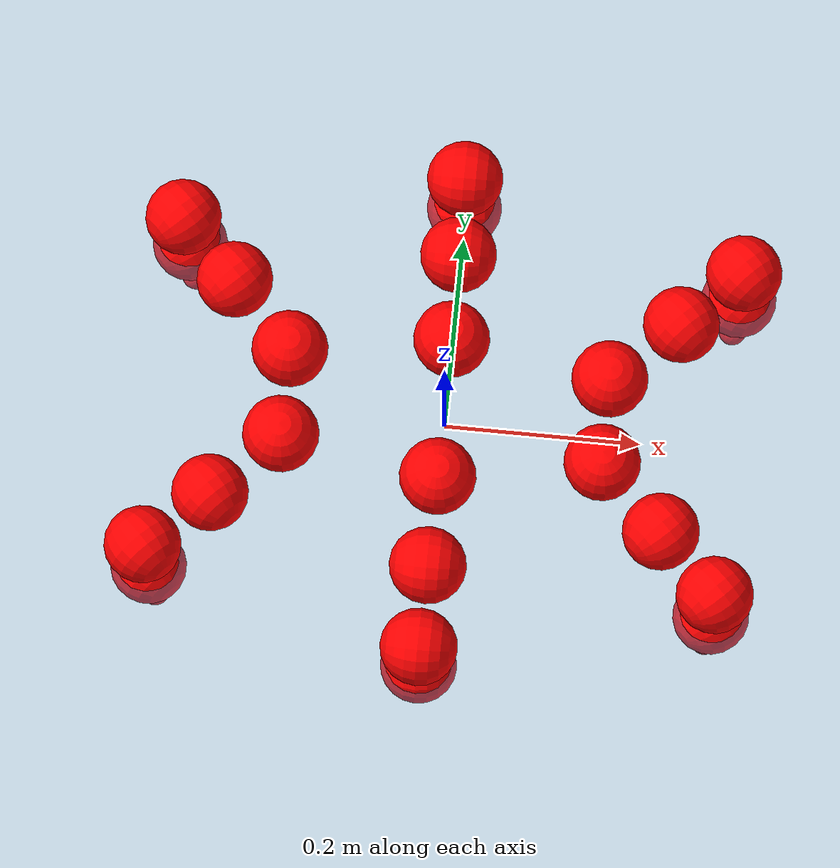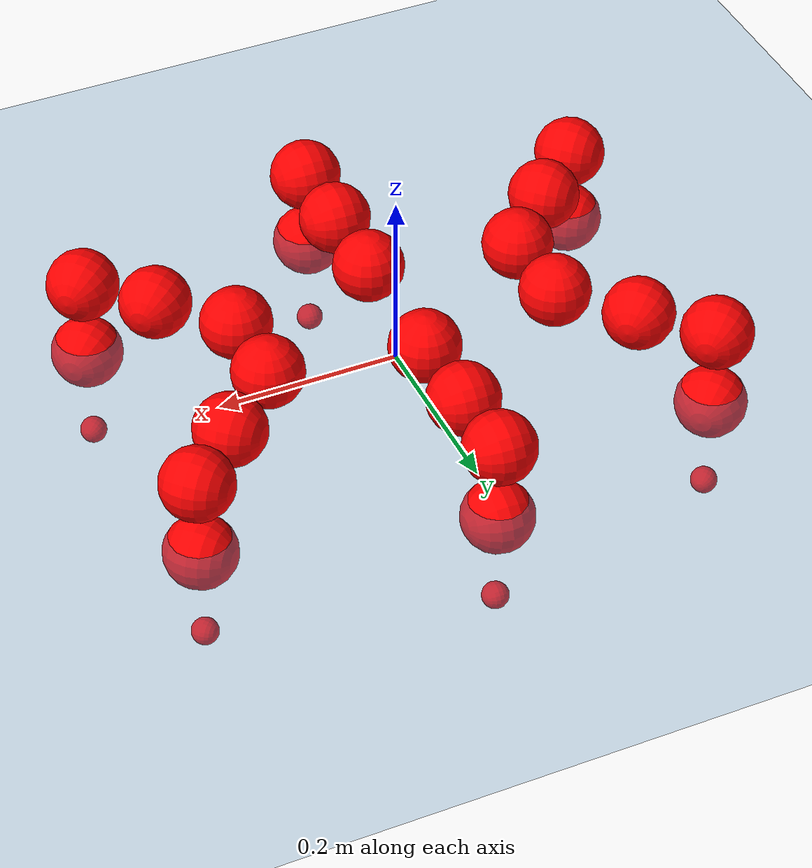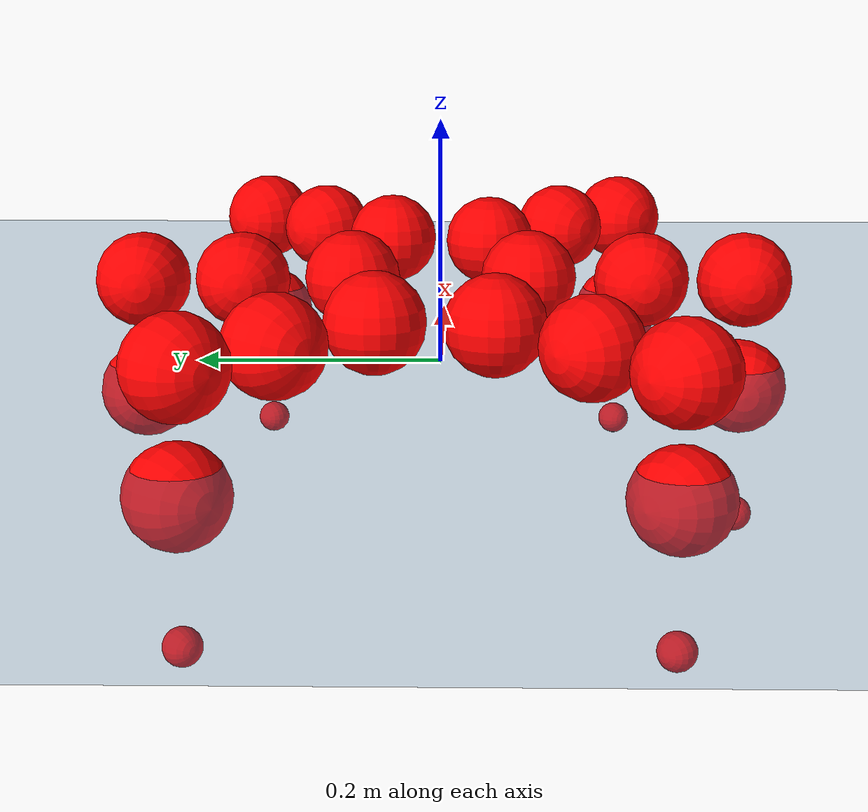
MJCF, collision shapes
<mujoco model="Golem">
  <compiler angle="radian" assetdir="assets" balanceinertia="true" inertiafromgeom="false"/>

  <option timestep="0.005" density="1.2" viscosity="2e-05"/>

  <size nkey="1"/>

  <visual>
    <quality shadowsize="8192"/>
    <map shadowclip="0.5"/>
  </visual>

  <default>
    <default class="/">
      <joint armature="0.01" damping="0.01" frictionloss="0.01"/>
      <geom contype="0" conaffinity="0" group="1" solref="-1000 -80"/>
      <site size="0.01 0.005 0.005" group="5"/>
      <general forcelimited="true" biastype="affine" gainprm="25" biasprm="0 -25 -0.5"/>
      <default class="visual">
        <geom type="mesh" group="2"/>
      </default>
      <default class="collision">
        <geom group="3"/>
      </default>
      <default class="foot">
        <geom size="0.01 0 0" condim="6" group="4" priority="1" solimp="0.015 1 0.01"/>
      </default>
      <default class="reward_collision_sphere">
        <geom group="5" rgba="1 0 0 1"/>
      </default>
    </default>
  </default>

  <asset>
    <texture type="skybox" colorspace="auto" name="//unnamed_texture_0" builtin="gradient" rgb1="0.95 0.95 0.95" rgb2="0.95 0.95 0.95" width="100" height="600"/>
    <texture type="2d" colorspace="auto" name="texplane" builtin="checker" rgb1="0.345 0.575 0.748" rgb2="0.345 0.575 0.748" markrgb="1 1 1" width="512" height="512"/>
    <material name="MatPlane" class="/" texture="texplane" texuniform="true" texrepeat="2 2" specular="0.9"/>
    <mesh name="body" class="/" file="body.stl" scale="0.001 0.001 0.001"/>
    <mesh name="coxa" class="/" file="coxa.stl" scale="0.001 0.001 0.001"/>
    <mesh name="femur" class="/" file="femur.stl" scale="0.001 0.001 0.001"/>
    <mesh name="tibia" class="/" file="tibia.stl" scale="0.001 0.001 0.001"/>
    <mesh name="tarsus" class="/" file="tarsus.stl" scale="0.001 0.001 0.001"/>
  </asset>

  <worldbody>
    <geom name="floor" class="/" size="100 100 0.125" type="plane" group="0" material="MatPlane"/>
    <light name="toplight_shadow" class="/" pos="0 0 5" dir="0.0990148 0.0990148 -0.990148" type="directional" ambient="0.04 0.04 0.04" diffuse="0.55 0.55 0.55" specular="0.12 0.12 0.12"/>
    <light name="toplight_fill" class="/" pos="0 0 5" dir="0.0990148 0.0990148 -0.990148" type="directional" castshadow="false" ambient="0.04 0.04 0.04" diffuse="0.3 0.3 0.3" specular="0.08 0.08 0.08"/>
    <body name="trunk" pos="0.000466459 0.000751234 0.000320613" quat="1 -2.85824e-05 -0.000457756 0.00019135">
      <inertial pos="-0.000142258 0.000356118 -0.00495922" quat="0.999994 0.00234449 0.00231222 -0.000939351" mass="3.31126" diaginertia="0.0115947 0.00287946 0.0155161"/>
      <joint name="//unnamed_joint_0" type="free"/>
      <geom name="//unnamed_geom_1" class="/" pos="0 0 0.0700504" quat="1 0 0 0" type="mesh" rgba="0.9 0.9 0.9 1" mesh="body"/>
      <site name="imu" class="/" pos="0.13729 -0.00238668 0.109371" size="0.00969409"/>
      <camera name="track" class="/" pos="0 -1.56195 0" quat="0.707107 0.707107 0 0" mode="trackcom"/>
      <camera name="ego_camera" class="/" pos="0.134253 0 0.109454" quat="-0.5 -0.5 0.5 0.5"/>
      <body name="coxa_RR" pos="-0.183318 -0.0657188 0.0696532" quat="0.382809 -0.000145351 0.000436996 -0.923828">
        <inertial pos="-0.000185652 0.000490589 -0.000117607" quat="1 3.72725e-05 0.000138505 -7.4945e-05" mass="0.181811" diaginertia="0.0117976 0.00290211 0.0152647"/>
        <joint name="coxa_joint_RR" class="/" pos="0 0 0" axis="-0.000150631 -0.00363148 -0.999993" stiffness="0.000470707" range="-3.14185 3.15757" armature="0.00948409" damping="0.0118047" frictionloss="0.00953615"/>
        <geom name="//unnamed_geom_2" class="/" type="mesh" rgba="0.2 0.2 0.2 1" mesh="coxa"/>
        <geom name="//unnamed_geom_3" class="reward_collision_sphere" size="0.0387764" pos="-0.0309815 0 0"/>
        <body name="femur_RR" pos="0.0618769 0.00233646 -0.00057769" quat="0.500103 -0.500128 0.499689 0.50008">
          <inertial pos="-0.0016648 -8.70327e-05 -0.00210034" quat="0.999958 -0.00845319 -0.0019303 -0.0030507" mass="0.181442" diaginertia="0.0117299 0.00289786 0.0155341"/>
          <joint name="femur_joint_RR" class="/" pos="0 0 0" axis="-0.000700612 -0.00579267 -0.999983" range="-3.13166 3.13619" armature="0.00959174" damping="0" frictionloss="0.00961673"/>
          <geom name="//unnamed_geom_4" class="/" type="mesh" rgba="0.9 0.9 0.9 1" mesh="femur"/>
          <geom name="//unnamed_geom_5" class="reward_collision_sphere" size="0.0387764"/>
          <body name="tibia_RR" pos="0.00122635 -0.0851245 -0.00124493" quat="-1.83117e-05 1 0.000138269 -0.000237801">
            <inertial pos="-2.04926e-05 -0.000226504 -0.000815435" quat="0.999993 0.000798406 -0.00348498 0.00147003" mass="0.184883" diaginertia="0.0120277 0.00298317 0.0161761"/>
            <joint name="tibia_joint_RR" class="/" pos="0 0 0" axis="4.5809e-05 -0.00337009 0.999994" range="-3.12478 3.13993" armature="0.0101778" damping="0.000226735" frictionloss="0.00959149"/>
            <geom name="//unnamed_geom_6" class="/" type="mesh" rgba="0.2 0.2 0.2 1" mesh="tibia"/>
            <geom name="//unnamed_geom_7" class="reward_collision_sphere" size="0.0387764"/>
            <body name="tarsus_RR" pos="0.0901658 -0.000420272 -0.000198218" quat="1 -2.91583e-05 -5.6114e-05 -4.30989e-05">
              <inertial pos="0.0639424 0.000487256 -0.000379886" quat="0.499841 0.493067 0.505902 0.501106" mass="0.18823" diaginertia="0.0116732 0.00291194 0.0160009"/>
              <joint name="tarsus_joint_RR" class="/" pos="0 0 0" axis="-0.00105989 0.0037218 0.999993" range="-3.13856 3.14849" armature="0.0101404" damping="0.0410594" frictionloss="0.00951116"/>
              <geom name="//unnamed_geom_8" class="/" type="mesh" rgba="0.9 0.9 0.9 1" mesh="tarsus"/>
              <geom name="foot_1" class="foot" size="0.00956332" pos="0.115664 0 0" quat="0 -0.707107 0 0.707107"/>
              <geom name="//unnamed_geom_10" class="reward_collision_sphere" size="0.0387764"/>
              <geom name="//unnamed_geom_11" class="reward_collision_sphere" size="0.0145411" pos="0.111017 0 0"/>
              <site name="foot_1" class="foot" pos="0.115664 0 0" quat="0 -0.707107 0 0.707107" size="0.00969409"/>
            </body>
          </body>
        </body>
      </body>
      <body name="coxa_RM" pos="-0.000437854 -0.103538 0.0704983" quat="0.706804 -0.00060383 0.000433721 -0.707409">
        <inertial pos="-0.000265572 -6.34025e-05 -0.000996483" quat="1 -7.60055e-05 -5.26039e-05 -0.00027489" mass="0.182462" diaginertia="0.0115817 0.00290106 0.0158038"/>
        <joint name="coxa_joint_RM" class="/" pos="0 0 0" axis="-7.34336e-05 -0.000302121 -1" range="-3.14324 3.12763" armature="0.00993402" damping="0.0103308" frictionloss="0.0101755"/>
        <geom name="//unnamed_geom_12" class="/" type="mesh" rgba="0.2 0.2 0.2 1" mesh="coxa"/>
        <geom name="//unnamed_geom_13" class="reward_collision_sphere" size="0.0387764" pos="-0.0309815 0 0"/>
        <body name="femur_RM" pos="0.0610847 -0.000712896 -0.00112096" quat="0.499979 -0.499924 0.49993 0.500167">
          <inertial pos="0.00139801 -6.93995e-05 0.00015673" quat="0.999964 -0.00110927 -0.00840472 0.000316541" mass="0.182612" diaginertia="0.0117311 0.00289374 0.0156403"/>
          <joint name="femur_joint_RM" class="/" pos="0 0 0" axis="0.00180688 -0.00135091 -0.999997" range="-3.14597 3.13379" armature="0.00927889" damping="0.00850299" frictionloss="0.00948057"/>
          <geom name="//unnamed_geom_14" class="/" type="mesh" rgba="0.9 0.9 0.9 1" mesh="femur"/>
          <geom name="//unnamed_geom_15" class="reward_collision_sphere" size="0.0387764"/>
          <body name="tibia_RM" pos="-0.000195246 -0.0836997 -0.000706255" quat="-8.12156e-05 1 2.64006e-05 2.28737e-05">
            <inertial pos="-0.0016413 -0.000942843 0.000721517" quat="0.999997 3.85189e-06 -0.00229251 0.000674046" mass="0.180007" diaginertia="0.0117699 0.002903 0.0153554"/>
            <joint name="tibia_joint_RM" class="/" pos="0 0 0" axis="-0.00460009 -0.00184342 0.999988" stiffness="0.00022562" range="-3.14375 3.15724" armature="0.00978937" damping="0.0134391" frictionloss="0.0101253"/>
            <geom name="//unnamed_geom_16" class="/" type="mesh" rgba="0.2 0.2 0.2 1" mesh="tibia"/>
            <geom name="//unnamed_geom_17" class="reward_collision_sphere" size="0.0387764"/>
            <body name="tarsus_RM" pos="0.0894384 -0.00134387 0.00078886" quat="1 4.23035e-05 -1.70553e-05 7.58827e-06">
              <inertial pos="0.0617635 -0.000226654 4.96338e-05" quat="0.500564 0.499713 0.499614 0.500109" mass="0.181543" diaginertia="0.0115085 0.0028765 0.015596"/>
              <joint name="tarsus_joint_RM" class="/" pos="0 0 0" axis="0.000301622 0.00111789 0.999999" range="-3.13593 3.14046" armature="0.00961385" damping="0.00745449" frictionloss="0.00977505"/>
              <geom name="//unnamed_geom_18" class="/" type="mesh" rgba="0.9 0.9 0.9 1" mesh="tarsus"/>
              <geom name="foot_2" class="foot" size="0.00927883" pos="0.115664 0 0" quat="0 -0.707107 0 0.707107"/>
              <geom name="//unnamed_geom_20" class="reward_collision_sphere" size="0.0387764"/>
              <geom name="//unnamed_geom_21" class="reward_collision_sphere" size="0.0145411" pos="0.111017 0 0"/>
              <site name="foot_2" class="foot" pos="0.115664 0 0" quat="0 -0.707107 0 0.707107" size="0.00969409"/>
            </body>
          </body>
        </body>
      </body>
      <body name="coxa_RF" pos="0.184063 -0.0640086 0.0697316" quat="0.923871 3.14798e-05 -2.02398e-05 -0.382704">
        <inertial pos="-0.00177379 0.00021076 0.000395561" quat="0.999994 -0.00260512 0.000743077 0.00207292" mass="0.185016" diaginertia="0.0115081 0.00282172 0.0155272"/>
        <joint name="coxa_joint_RF" class="/" pos="0 0 0" axis="-0.00045605 -0.00384413 -0.999993" stiffness="0.000888135" range="-3.11923 3.13864" armature="0.00972241" damping="0.00883346" frictionloss="0.0100327"/>
        <geom name="//unnamed_geom_22" class="/" type="mesh" rgba="0.2 0.2 0.2 1" mesh="coxa"/>
        <geom name="//unnamed_geom_23" class="reward_collision_sphere" size="0.0387764" pos="-0.0309815 0 0"/>
        <body name="femur_RF" pos="0.0609602 -0.000804126 7.04159e-05" quat="0.499862 -0.499677 0.500234 0.500227">
          <inertial pos="-0.000806035 0.0014622 -0.000793026" quat="0.999999 -0.000536025 -0.00075561 0.0010557" mass="0.183223" diaginertia="0.0116798 0.0028856 0.0156258"/>
          <joint name="femur_joint_RF" class="/" pos="0 0 0" axis="0.0025988 0.000288809 -0.999997" range="-3.13005 3.14535" armature="0.00975561" damping="0.0100349" frictionloss="0.00979054"/>
          <geom name="//unnamed_geom_24" class="/" type="mesh" rgba="0.9 0.9 0.9 1" mesh="femur"/>
          <geom name="//unnamed_geom_25" class="reward_collision_sphere" size="0.0387764"/>
          <body name="tibia_RF" pos="0.00102296 -0.0834629 -0.00015052" quat="-0.000140348 1 -0.000256642 -2.06372e-05">
            <inertial pos="-0.000998062 -0.000381872 0.00131885" quat="0.999992 -0.0031264 -0.00241874 -0.0010775" mass="0.181873" diaginertia="0.0117173 0.00291129 0.0156404"/>
            <joint name="tibia_joint_RF" class="/" pos="0 0 0" axis="0.00323598 0.00232217 0.999992" range="-3.14082 3.1379" armature="0.00954149" damping="0" frictionloss="0.00966676"/>
            <geom name="//unnamed_geom_26" class="/" type="mesh" rgba="0.2 0.2 0.2 1" mesh="tibia"/>
            <geom name="//unnamed_geom_27" class="reward_collision_sphere" size="0.0387764"/>
            <body name="tarsus_RF" pos="0.0909411 0.000911718 -0.000528503" quat="1 -9.20162e-06 7.05853e-05 -7.66255e-05">
              <inertial pos="0.0599555 7.8039e-05 0.000102185" quat="0.500016 0.500178 0.499759 0.500048" mass="0.180274" diaginertia="0.0115933 0.00297104 0.0156071"/>
              <joint name="tarsus_joint_RF" class="/" pos="0 0 0" axis="-0.0053909 0.00671893 0.999963" range="-3.12138 3.13709" armature="0.009794" damping="0" frictionloss="0.0106573"/>
              <geom name="//unnamed_geom_28" class="/" type="mesh" rgba="0.9 0.9 0.9 1" mesh="tarsus"/>
              <geom name="foot_3" class="foot" size="0.0101929" pos="0.115664 0 0" quat="0 -0.707107 0 0.707107"/>
              <geom name="//unnamed_geom_30" class="reward_collision_sphere" size="0.0387764"/>
              <geom name="//unnamed_geom_31" class="reward_collision_sphere" size="0.0145411" pos="0.111017 0 0"/>
              <site name="foot_3" class="foot" pos="0.115664 0 0" quat="0 -0.707107 0 0.707107" size="0.00969409"/>
            </body>
          </body>
        </body>
      </body>
      <body name="coxa_LR" pos="-0.183607 0.0670491 0.0711581" quat="0.382698 -0.000290103 -0.000389768 0.923873">
        <inertial pos="-0.000330162 -0.000384506 -0.00131064" quat="0.999999 -0.000157185 0.000469652 -0.000991719" mass="0.175993" diaginertia="0.0114425 0.00283039 0.0153237"/>
        <joint name="coxa_joint_LR" class="/" pos="0 0 0" axis="3.10585e-05 0.000214311 -1" range="-3.12983 3.17637" armature="0.00980921" damping="0.00611295" frictionloss="0.00878799"/>
        <geom name="//unnamed_geom_32" class="/" type="mesh" rgba="0.2 0.2 0.2 1" mesh="coxa"/>
        <geom name="//unnamed_geom_33" class="reward_collision_sphere" size="0.0387764" pos="-0.0309815 0 0"/>
        <body name="femur_LR" pos="0.0618266 -0.00296358 -0.00162091" quat="0.499978 -0.500016 0.500013 0.499993">
          <inertial pos="0.000271983 -0.000612335 -0.00022207" quat="0.999992 -0.00307218 -0.00157449 0.00223824" mass="0.184273" diaginertia="0.0120175 0.0030101 0.0159395"/>
          <joint name="femur_joint_LR" class="/" pos="0 0 0" axis="5.14701e-05 -0.00446095 0.99999" range="-3.13785 3.13492" armature="0.00953746" damping="0.00994163" frictionloss="0.00993902"/>
          <geom name="//unnamed_geom_34" class="/" type="mesh" rgba="0.9 0.9 0.9 1" mesh="femur"/>
          <geom name="//unnamed_geom_35" class="reward_collision_sphere" size="0.0387764"/>
          <body name="tibia_LR" pos="-0.000123522 -0.0848043 -0.00121946" quat="1.22401e-05 1 0.000119192 -5.62529e-06">
            <inertial pos="-0.000784877 0.00179751 5.32705e-05" quat="0.999998 -4.25342e-05 -0.00133982 0.00130117" mass="0.181942" diaginertia="0.0120047 0.00291646 0.0152979"/>
            <joint name="tibia_joint_LR" class="/" pos="0 0 0" axis="0.00089698 -9.043e-05 -1" range="-3.1393 3.13567" armature="0.00937444" damping="0.00117823" frictionloss="0.00928696"/>
            <geom name="//unnamed_geom_36" class="/" type="mesh" rgba="0.2 0.2 0.2 1" mesh="tibia"/>
            <geom name="//unnamed_geom_37" class="reward_collision_sphere" size="0.0387764"/>
            <body name="tarsus_LR" pos="0.0920721 -4.59241e-06 0.00232445" quat="1 -0.000317029 -0.00019054 0.000416978">
              <inertial pos="0.0637109 0.00109252 0.000923173" quat="0.502737 0.499506 0.501583 0.496149" mass="0.176249" diaginertia="0.0113601 0.00283155 0.0153076"/>
              <joint name="tarsus_joint_LR" class="/" pos="0 0 0" axis="0.00227384 -3.30903e-05 -0.999997" range="-3.1473 3.13499" armature="0.0087058" damping="0.0287251" frictionloss="0.0100742"/>
              <geom name="//unnamed_geom_38" class="/" type="mesh" rgba="0.9 0.9 0.9 1" mesh="tarsus"/>
              <geom name="foot_4" class="foot" size="0.0094378" pos="0.115664 0 0" quat="0.707107 0 -0.707107 0"/>
              <geom name="//unnamed_geom_40" class="reward_collision_sphere" size="0.0387764"/>
              <geom name="//unnamed_geom_41" class="reward_collision_sphere" size="0.0145411" pos="0.111017 0 0"/>
              <site name="foot_4" class="foot" pos="0.115664 0 0" quat="0.707107 0 -0.707107 0" size="0.00969409"/>
            </body>
          </body>
        </body>
      </body>
      <body name="coxa_LM" pos="-0.000470701 0.102271 0.070115" quat="0.706541 0.000115244 0.000363771 0.707672">
        <inertial pos="0.00113877 -0.00119864 0.00180838" quat="0.999996 -0.000723489 0.00161976 0.00240045" mass="0.182113" diaginertia="0.0115501 0.00289014 0.0155875"/>
        <joint name="coxa_joint_LM" class="/" pos="0 0 0" axis="0.00334764 0.00229938 -0.999992" range="-3.13284 3.14145" armature="0.0106284" damping="0" frictionloss="0.00938301"/>
        <geom name="//unnamed_geom_42" class="/" type="mesh" rgba="0.2 0.2 0.2 1" mesh="coxa"/>
        <geom name="//unnamed_geom_43" class="reward_collision_sphere" size="0.0387764" pos="-0.0309815 0 0"/>
        <body name="femur_LM" pos="0.0586402 0.00161142 -0.000975939" quat="0.500081 -0.500072 0.499905 0.499942">
          <inertial pos="-0.000685425 -0.000109509 -0.00121508" quat="0.999993 0.0018371 0.00311881 0.00118314" mass="0.184159" diaginertia="0.0117001 0.00291696 0.015657"/>
          <joint name="femur_joint_LM" class="/" pos="0 0 0" axis="0.00288297 -0.00380292 0.999989" range="-3.15129 3.13211" armature="0.00944825" damping="0.0060457" frictionloss="0.00974359"/>
          <geom name="//unnamed_geom_44" class="/" type="mesh" rgba="0.9 0.9 0.9 1" mesh="femur"/>
          <geom name="//unnamed_geom_45" class="reward_collision_sphere" size="0.0387764"/>
          <body name="tibia_LM" pos="6.98616e-05 -0.0814108 0.00106551" quat="-4.48917e-05 1 -6.10055e-05 -3.99463e-05">
            <inertial pos="0.00157751 -0.00132403 0.00202106" quat="1 0.000161711 -0.000133411 -0.00019198" mass="0.182589" diaginertia="0.011902 0.00286815 0.0157132"/>
            <joint name="tibia_joint_LM" class="/" pos="0 0 0" axis="0.00144067 0.00541812 -0.999984" range="-3.14881 3.14215" armature="0.00956441" damping="0.00172248" frictionloss="0.00961348"/>
            <geom name="//unnamed_geom_46" class="/" type="mesh" rgba="0.2 0.2 0.2 1" mesh="tibia"/>
            <geom name="//unnamed_geom_47" class="reward_collision_sphere" size="0.0387764"/>
            <body name="tarsus_LM" pos="0.0930633 -0.000724194 -0.000378318" quat="1 -5.09352e-05 -0.000143463 -0.000159248">
              <inertial pos="0.0620884 -0.000201046 -0.000651456" quat="0.500254 0.498918 0.501854 0.498968" mass="0.186421" diaginertia="0.0117874 0.00305095 0.0162552"/>
              <joint name="tarsus_joint_LM" class="/" pos="0 0 0" axis="0.000107447 -0.000147208 -1" range="-3.18283 3.14901" armature="0.0097577" damping="9.11247e-05" frictionloss="0.00968979"/>
              <geom name="//unnamed_geom_48" class="/" type="mesh" rgba="0.9 0.9 0.9 1" mesh="tarsus"/>
              <geom name="foot_5" class="foot" size="0.00983377" pos="0.115664 0 0" quat="0.707107 0 -0.707107 0"/>
              <geom name="//unnamed_geom_50" class="reward_collision_sphere" size="0.0387764"/>
              <geom name="//unnamed_geom_51" class="reward_collision_sphere" size="0.0145411" pos="0.111017 0 0"/>
              <site name="foot_5" class="foot" pos="0.115664 0 0" quat="0.707107 0 -0.707107 0" size="0.00969409"/>
            </body>
          </body>
        </body>
      </body>
      <body name="coxa_LF" pos="0.184039 0.0667051 0.0714393" quat="0.923982 0.000639609 -0.000113429 0.382436">
        <inertial pos="-0.000115255 0.0019331 0.000745637" quat="1 0.0004481 -0.000485812 -0.000114341" mass="0.185601" diaginertia="0.0121229 0.00298229 0.0160485"/>
        <joint name="coxa_joint_LF" class="/" pos="0 0 0" axis="-0.000579818 -0.0022764 -0.999997" stiffness="0.000566173" range="-3.13738 3.14532" armature="0.0107311" damping="0.00117304" frictionloss="0.00946377"/>
        <geom name="//unnamed_geom_52" class="/" type="mesh" rgba="0.2 0.2 0.2 1" mesh="coxa"/>
        <geom name="//unnamed_geom_53" class="reward_collision_sphere" size="0.0387764" pos="-0.0309815 0 0"/>
        <body name="femur_LF" pos="0.0619724 -0.00161543 -0.00242568" quat="0.499877 -0.500245 0.500075 0.499803">
          <inertial pos="-0.000352953 -0.000115535 0.00202906" quat="0.999988 7.24713e-06 -0.000549368 0.00487477" mass="0.183392" diaginertia="0.0118405 0.00298333 0.0156554"/>
          <joint name="femur_joint_LF" class="/" pos="0 0 0" axis="-0.000183532 0.00091721 1" range="-3.13665 3.10488" armature="0.0095767" damping="0" frictionloss="0.00963872"/>
          <geom name="//unnamed_geom_54" class="/" type="mesh" rgba="0.9 0.9 0.9 1" mesh="femur"/>
          <geom name="//unnamed_geom_55" class="reward_collision_sphere" size="0.0387764"/>
          <body name="tibia_LF" pos="0.000636098 -0.0841253 0.00124417" quat="0.000371112 1 -0.000250609 -2.19193e-06">
            <inertial pos="-0.000205233 -0.00135005 0.000196358" quat="0.999997 6.69953e-05 0.00122302 0.00206337" mass="0.183173" diaginertia="0.0118897 0.00291137 0.0158713"/>
            <joint name="tibia_joint_LF" class="/" pos="0 0 0" axis="-0.00236521 0.00560712 -0.999981" range="-3.15368 3.14229" armature="0.00946954" damping="0" frictionloss="0.0103286"/>
            <geom name="//unnamed_geom_56" class="/" type="mesh" rgba="0.2 0.2 0.2 1" mesh="tibia"/>
            <geom name="//unnamed_geom_57" class="reward_collision_sphere" size="0.0387764"/>
            <body name="tarsus_LF" pos="0.0913804 -0.000215277 0.000285279" quat="0.999999 -0.000876628 -8.68972e-05 -0.000629339">
              <inertial pos="0.0638606 7.85001e-05 0.000488579" quat="0.498988 0.501529 0.500001 0.499479" mass="0.182982" diaginertia="0.0114258 0.00283352 0.0155591"/>
              <joint name="tarsus_joint_LF" class="/" pos="0 0 0" axis="0.00485979 0.0110702 -0.999927" stiffness="0.0253719" range="-3.15307 3.12365" armature="0.009326" damping="0.0236882" frictionloss="0.0092317"/>
              <geom name="//unnamed_geom_58" class="/" type="mesh" rgba="0.9 0.9 0.9 1" mesh="tarsus"/>
              <geom name="foot_6" class="foot" size="0.00930998" pos="0.115664 0 0" quat="0.707107 0 -0.707107 0"/>
              <geom name="//unnamed_geom_60" class="reward_collision_sphere" size="0.0387764"/>
              <geom name="//unnamed_geom_61" class="reward_collision_sphere" size="0.0145411" pos="0.111017 0 0"/>
              <site name="foot_6" class="foot" pos="0.115664 0 0" quat="0.707107 0 -0.707107 0" size="0.00969409"/>
            </body>
          </body>
        </body>
      </body>
    </body>
  </worldbody>

  <contact>
    <pair class="/" geom1="floor" geom2="foot_1" name="//unnamed_contact_0"/>
    <pair class="/" geom1="floor" geom2="foot_2" name="//unnamed_contact_1"/>
    <pair class="/" geom1="floor" geom2="foot_3" name="//unnamed_contact_2"/>
    <pair class="/" geom1="floor" geom2="foot_4" name="//unnamed_contact_3"/>
    <pair class="/" geom1="floor" geom2="foot_5" name="//unnamed_contact_4"/>
    <pair class="/" geom1="floor" geom2="foot_6" name="//unnamed_contact_5"/>
  </contact>

  <actuator>
    <general name="coxa_joint_RR" class="/" joint="coxa_joint_RR" forcerange="-6.65754 6.65754" gainprm="23.4838" biasprm="0 -23.4838 -0.5105"/>
    <general name="femur_joint_RR" class="/" joint="femur_joint_RR" forcerange="-6.81394 6.81394" gainprm="23.4838" biasprm="0 -23.4838 -0.5105"/>
    <general name="tibia_joint_RR" class="/" joint="tibia_joint_RR" forcerange="-6.56273 6.56273" gainprm="23.4838" biasprm="0 -23.4838 -0.5105"/>
    <general name="tarsus_joint_RR" class="/" joint="tarsus_joint_RR" forcerange="-6.84743 6.84743" gainprm="23.4838" biasprm="0 -23.4838 -0.5105"/>
    <general name="coxa_joint_RM" class="/" joint="coxa_joint_RM" forcerange="-7.09656 7.09656" gainprm="23.4838" biasprm="0 -23.4838 -0.5105"/>
    <general name="femur_joint_RM" class="/" joint="femur_joint_RM" forcerange="-7.10151 7.10151" gainprm="23.4838" biasprm="0 -23.4838 -0.5105"/>
    <general name="tibia_joint_RM" class="/" joint="tibia_joint_RM" forcerange="-6.76719 6.76719" gainprm="23.4838" biasprm="0 -23.4838 -0.5105"/>
    <general name="tarsus_joint_RM" class="/" joint="tarsus_joint_RM" forcerange="-7.56282 7.56282" gainprm="23.4838" biasprm="0 -23.4838 -0.5105"/>
    <general name="coxa_joint_RF" class="/" joint="coxa_joint_RF" forcerange="-7.10469 7.10469" gainprm="23.4838" biasprm="0 -23.4838 -0.5105"/>
    <general name="femur_joint_RF" class="/" joint="femur_joint_RF" forcerange="-7.16051 7.16051" gainprm="23.4838" biasprm="0 -23.4838 -0.5105"/>
    <general name="tibia_joint_RF" class="/" joint="tibia_joint_RF" forcerange="-7.47088 7.47088" gainprm="23.4838" biasprm="0 -23.4838 -0.5105"/>
    <general name="tarsus_joint_RF" class="/" joint="tarsus_joint_RF" forcerange="-6.80976 6.80976" gainprm="23.4838" biasprm="0 -23.4838 -0.5105"/>
    <general name="coxa_joint_LR" class="/" joint="coxa_joint_LR" forcerange="-7.10168 7.10168" gainprm="23.4838" biasprm="0 -23.4838 -0.5105"/>
    <general name="femur_joint_LR" class="/" joint="femur_joint_LR" forcerange="-6.93066 6.93066" gainprm="23.4838" biasprm="0 -23.4838 -0.5105"/>
    <general name="tibia_joint_LR" class="/" joint="tibia_joint_LR" forcerange="-7.34459 7.34459" gainprm="23.4838" biasprm="0 -23.4838 -0.5105"/>
    <general name="tarsus_joint_LR" class="/" joint="tarsus_joint_LR" forcerange="-7.1782 7.1782" gainprm="23.4838" biasprm="0 -23.4838 -0.5105"/>
    <general name="coxa_joint_LM" class="/" joint="coxa_joint_LM" forcerange="-7.34203 7.34203" gainprm="23.4838" biasprm="0 -23.4838 -0.5105"/>
    <general name="femur_joint_LM" class="/" joint="femur_joint_LM" forcerange="-7.18146 7.18146" gainprm="23.4838" biasprm="0 -23.4838 -0.5105"/>
    <general name="tibia_joint_LM" class="/" joint="tibia_joint_LM" forcerange="-7.08461 7.08461" gainprm="23.4838" biasprm="0 -23.4838 -0.5105"/>
    <general name="tarsus_joint_LM" class="/" joint="tarsus_joint_LM" forcerange="-7.03921 7.03921" gainprm="23.4838" biasprm="0 -23.4838 -0.5105"/>
    <general name="coxa_joint_LF" class="/" joint="coxa_joint_LF" forcerange="-7.30066 7.30066" gainprm="23.4838" biasprm="0 -23.4838 -0.5105"/>
    <general name="femur_joint_LF" class="/" joint="femur_joint_LF" forcerange="-7.02255 7.02255" gainprm="23.4838" biasprm="0 -23.4838 -0.5105"/>
    <general name="tibia_joint_LF" class="/" joint="tibia_joint_LF" forcerange="-6.9897 6.9897" gainprm="23.4838" biasprm="0 -23.4838 -0.5105"/>
    <general name="tarsus_joint_LF" class="/" joint="tarsus_joint_LF" forcerange="-7.33974 7.33974" gainprm="23.4838" biasprm="0 -23.4838 -0.5105"/>
  </actuator>

  <sensor>
    <gyro site="imu" name="imu_angular_velocity"/>
    <velocimeter site="imu" name="imu_linear_velocity"/>
    <framelinvel objtype="site" objname="foot_1" name="foot_1_global_linear_velocity"/>
    <framelinvel objtype="site" objname="foot_2" name="foot_2_global_linear_velocity"/>
    <framelinvel objtype="site" objname="foot_3" name="foot_3_global_linear_velocity"/>
    <framelinvel objtype="site" objname="foot_4" name="foot_4_global_linear_velocity"/>
    <framelinvel objtype="site" objname="foot_5" name="foot_5_global_linear_velocity"/>
    <framelinvel objtype="site" objname="foot_6" name="foot_6_global_linear_velocity"/>
  </sensor>

  <keyframe>
    <key name="home" qpos="0 0 0.1457 1 0 0 0 0 0 0 0 0 0 0 0 0 0 0 0 0 0 0 0 0 0 0 0 0 0 0 0"/>
  </keyframe>
</mujoco>
